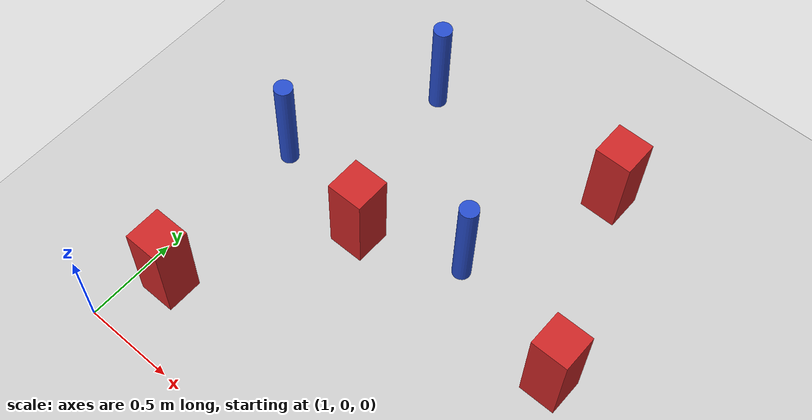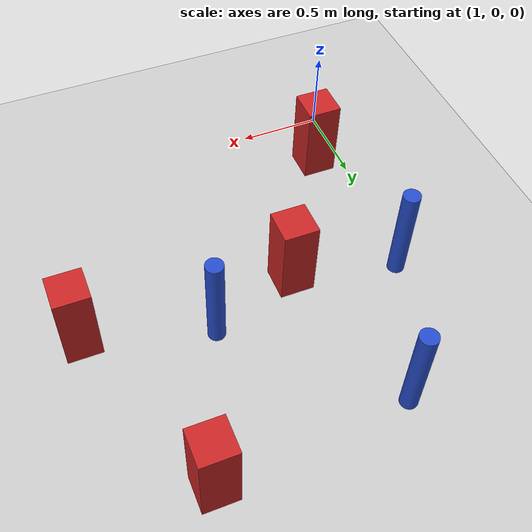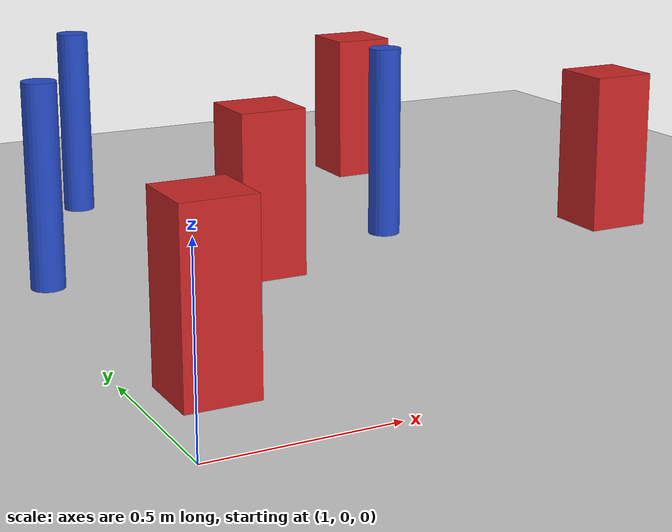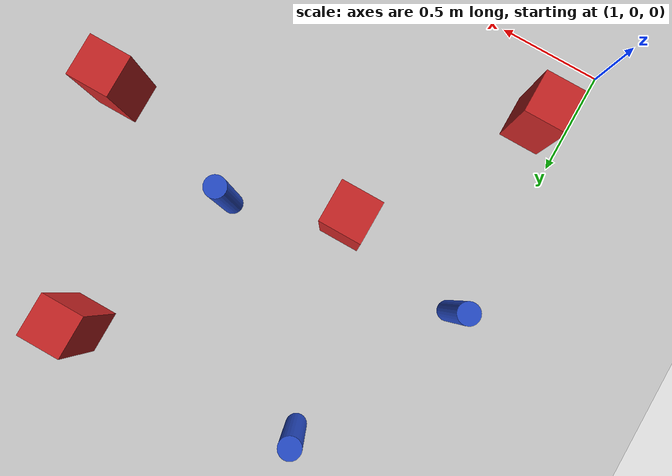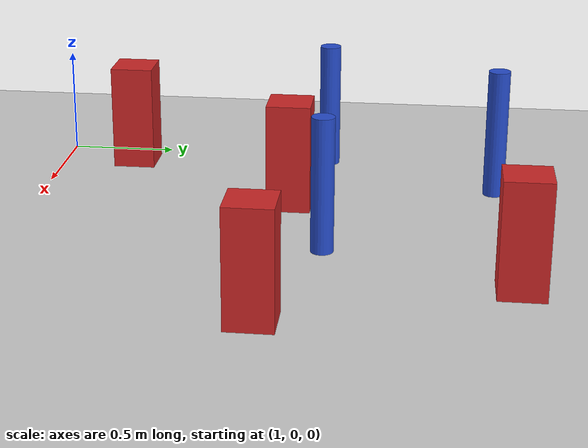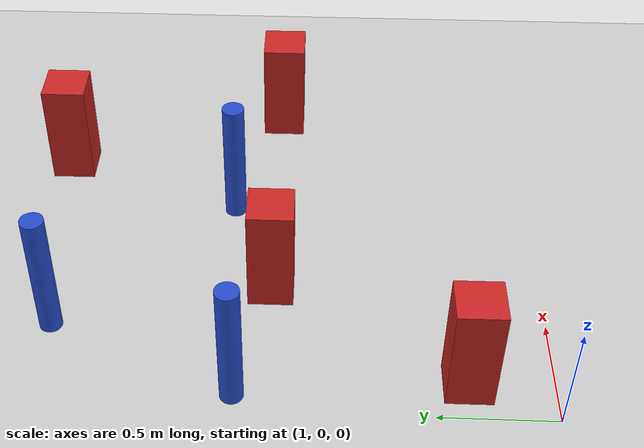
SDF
<sdf version="1.6">
 <world name="default">
  <model name="ground_plane">
   <static>1</static>
   <link name="link">
    <collision name="collision">
     <geometry><plane><normal>0 0 1</normal><size>100 100</size></plane></geometry>
     <surface><friction><ode><mu>100</mu><mu2>50</mu2></ode></friction></surface>
    </collision>
    <visual name="visual">
     <cast_shadows>0</cast_shadows>
     <geometry><plane><normal>0 0 1</normal><size>100 100</size></plane></geometry>
     <material>
      <ambient>1.0 1.0 1.0 1.0</ambient>
      <diffuse>0.8 0.8 0.8 1.0</diffuse>
      <specular>0.01 0.01 0.01 1.000000</specular>
     </material>
    </visual>
   </link>
  </model>
  <model name="square_post_obstacle14">
   <static>true</static>
   <pose>1.17293309374 0.360948759211 -6.11067671241e-07 -5.50515727128e-06 -8.79689657224e-07 2.37013304536e-05</pose>
   <link name="link">
    <pose>0 0 0.25 0 -0 0</pose>
    <inertial>
     <mass>100</mass>
     <inertia>
      <ixx>0.166667</ixx>
      <ixy>0</ixy>
      <ixz>0</ixz>
      <iyy>0.166667</iyy>
      <iyz>0</iyz>
      <izz>0.166667</izz>
     </inertia>
    </inertial>
    <collision name="collision"><geometry><box><size>.2 .2 .5</size></box></geometry></collision>
    <visual name="visual">
     <geometry><box><size>.2 .2 .5</size></box></geometry>
     <material>
      <script><name>Gazebo/Red</name><uri>file://media/materials/scripts/gazebo.material</uri></script>
     </material>
    </visual>
   </link>
  </model>
  <model name="square_post_obstacle64">
   <static>true</static>
   <pose>2.91829927237 1.17195060015 -6.11067671241e-07 -5.50515727128e-06 -8.79689657224e-07 2.37013304536e-05</pose>
   <link name="link">
    <pose>0 0 0.25 0 -0 0</pose>
    <inertial>
     <mass>100</mass>
     <inertia>
      <ixx>0.166667</ixx>
      <ixy>0</ixy>
      <ixz>0</ixz>
      <iyy>0.166667</iyy>
      <iyz>0</iyz>
      <izz>0.166667</izz>
     </inertia>
    </inertial>
    <collision name="collision"><geometry><box><size>.2 .2 .5</size></box></geometry></collision>
    <visual name="visual">
     <geometry><box><size>.2 .2 .5</size></box></geometry>
     <material>
      <script><name>Gazebo/Red</name><uri>file://media/materials/scripts/gazebo.material</uri></script>
     </material>
    </visual>
   </link>
  </model>
  <model name="pole_obstacle100">
   <static>true</static>
   <pose>1.44237367063 2.12480274671 -9.47619616065e-06 5.49618799737e-07 2.36310414062e-07 -1.55090534798e-07</pose>
   <link name="link">
    <pose>0 0 0.3 0 -0 0</pose>
    <inertial>
     <mass>1</mass>
     <inertia><ixx>0.145833</ixx><ixy>0</ixy><ixz>0</ixz><iyy>0.145833</iyy><iyz>0</iyz><izz>0.125</izz></inertia>
    </inertial>
    <collision name="collision">
     <geometry><cylinder><radius>0.05</radius><length>.6</length></cylinder></geometry>
    </collision>
    <visual name="visual">
     <geometry><cylinder><radius>0.05</radius><length>.6</length></cylinder></geometry>
     <material>
      <script><name>Gazebo/Blue</name><uri>file://media/materials/scripts/gazebo.material</uri></script>
     </material>
    </visual>
   </link>
  </model>
  <model name="pole_obstacle107">
   <static>true</static>
   <pose>1.08461921749 1.32073771476 -9.47619616065e-06 5.49618799737e-07 2.36310414065e-07 -1.55090534798e-07</pose>
   <link name="link">
    <pose>0 0 0.3 0 -0 0</pose>
    <inertial>
     <mass>1</mass>
     <inertia><ixx>0.145833</ixx><ixy>0</ixy><ixz>0</ixz><iyy>0.145833</iyy><iyz>0</iyz><izz>0.125</izz></inertia>
    </inertial>
    <collision name="collision">
     <geometry><cylinder><radius>0.05</radius><length>.6</length></cylinder></geometry>
    </collision>
    <visual name="visual">
     <geometry><cylinder><radius>0.05</radius><length>.6</length></cylinder></geometry>
     <material>
      <script><name>Gazebo/Blue</name><uri>file://media/materials/scripts/gazebo.material</uri></script>
     </material>
    </visual>
   </link>
  </model>
  <model name="square_post_obstacle107">
   <static>true</static>
   <pose>2.5309783764 2.2004067568 -6.11067671241e-07 -5.50515727128e-06 -8.79689657224e-07 2.37013304536e-05</pose>
   <link name="link">
    <pose>0 0 0.25 0 -0 0</pose>
    <inertial>
     <mass>100</mass>
     <inertia>
      <ixx>0.166667</ixx>
      <ixy>0</ixy>
      <ixz>0</ixz>
      <iyy>0.166667</iyy>
      <iyz>0</iyz>
      <izz>0.166667</izz>
     </inertia>
    </inertial>
    <collision name="collision"><geometry><box><size>.2 .2 .5</size></box></geometry></collision>
    <visual name="visual">
     <geometry><box><size>.2 .2 .5</size></box></geometry>
     <material>
      <script><name>Gazebo/Red</name><uri>file://media/materials/scripts/gazebo.material</uri></script>
     </material>
    </visual>
   </link>
  </model>
  <model name="pole_obstacle190">
   <static>true</static>
   <pose>2.21508894071 1.37890415164 -9.47619616065e-06 5.49618799737e-07 2.36310414072e-07 -1.55090534793e-07</pose>
   <link name="link">
    <pose>0 0 0.3 0 -0 0</pose>
    <inertial>
     <mass>1</mass>
     <inertia><ixx>0.145833</ixx><ixy>0</ixy><ixz>0</ixz><iyy>0.145833</iyy><iyz>0</iyz><izz>0.125</izz></inertia>
    </inertial>
    <collision name="collision">
     <geometry><cylinder><radius>0.05</radius><length>.6</length></cylinder></geometry>
    </collision>
    <visual name="visual">
     <geometry><cylinder><radius>0.05</radius><length>.6</length></cylinder></geometry>
     <material>
      <script><name>Gazebo/Blue</name><uri>file://media/materials/scripts/gazebo.material</uri></script>
     </material>
    </visual>
   </link>
  </model>
  <model name="square_post_obstacle211">
   <static>true</static>
   <pose>1.69269003861 1.1866236735 -6.11067671241e-07 -5.50515727128e-06 -8.79689657224e-07 2.37013304536e-05</pose>
   <link name="link">
    <pose>0 0 0.25 0 -0 0</pose>
    <inertial>
     <mass>100</mass>
     <inertia>
      <ixx>0.166667</ixx>
      <ixy>0</ixy>
      <ixz>0</ixz>
      <iyy>0.166667</iyy>
      <iyz>0</iyz>
      <izz>0.166667</izz>
     </inertia>
    </inertial>
    <collision name="collision"><geometry><box><size>.2 .2 .5</size></box></geometry></collision>
    <visual name="visual">
     <geometry><box><size>.2 .2 .5</size></box></geometry>
     <material>
      <script><name>Gazebo/Red</name><uri>file://media/materials/scripts/gazebo.material</uri></script>
     </material>
    </visual>
   </link>
  </model>
 </world>
</sdf>
